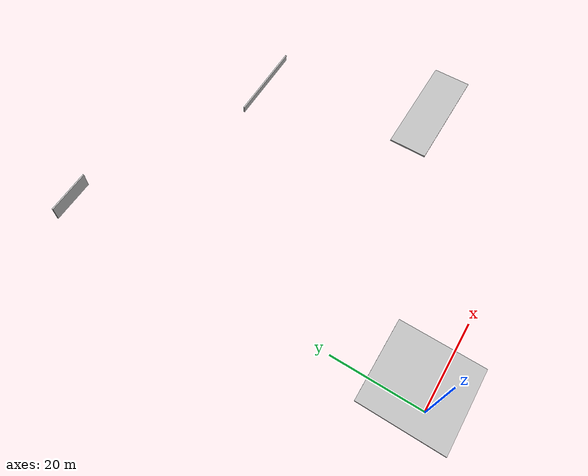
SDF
<sdf version="1.4">
 <world name="default">
  <include><uri>model://sun</uri></include>
  <model name="wall">
   <static>true</static>
   <pose>3 3 3.7  0 0 0</pose>
   <link name="link">
    <collision name="collision">
     <geometry><box><size>18 18 0.3</size></box></geometry>
     <surface><friction><ode><mu>100</mu><mu2>50</mu2></ode></friction></surface>
    </collision>
    <visual name="visual">
     <geometry><box><size>18 18 0.3</size></box></geometry>
     <material>
      <script><uri>file://media/materials/scripts/gazebo.material</uri><name>Gazebo/Wall</name></script>
     </material>
    </visual>
   </link>
  </model>
  <model name="wall2">
   <static>true</static>
   <pose>0 83.5 2  0 0 0</pose>
   <link name="link">
    <collision name="collision">
     <geometry><box><size>10 0.3 3</size></box></geometry>
     <surface><friction><ode><mu>100</mu><mu2>50</mu2></ode></friction></surface>
    </collision>
    <visual name="visual">
     <geometry><box><size>10 0.3 4</size></box></geometry>
     <material>
      <script><uri>file://media/materials/scripts/gazebo.material</uri><name>Gazebo/Wall</name></script>
     </material>
    </visual>
   </link>
  </model>
  <model name="wall3">
   <static>true</static>
   <pose>45.6 25.8 21  0 0 0</pose>
   <link name="link">
    <collision name="collision">
     <geometry><box><size>20 7 0.3</size></box></geometry>
     <surface><friction><ode><mu>100</mu><mu2>50</mu2></ode></friction></surface>
    </collision>
    <visual name="visual">
     <geometry><box><size>20 7 0.3</size></box></geometry>
     <material>
      <script><uri>file://media/materials/scripts/gazebo.material</uri><name>Gazebo/Wall</name></script>
     </material>
    </visual>
   </link>
  </model>
  <model name="wall4">
   <static>true</static>
   <pose>46.16 63.329 5.25  0 0 0</pose>
   <link name="link">
    <collision name="collision">
     <geometry><box><size>18 0.3 1.5</size></box></geometry>
     <surface><friction><ode><mu>100</mu><mu2>50</mu2></ode></friction></surface>
    </collision>
    <visual name="visual">
     <geometry><box><size>18 0.3 1.5</size></box></geometry>
     <material>
      <script><uri>file://media/materials/scripts/gazebo.material</uri><name>Gazebo/Wall</name></script>
     </material>
    </visual>
   </link>
  </model>
  <plugin name="ros_interface_plugin" filename="librotors_gazebo_ros_interface_plugin.so"/>
 </world>
</sdf>
